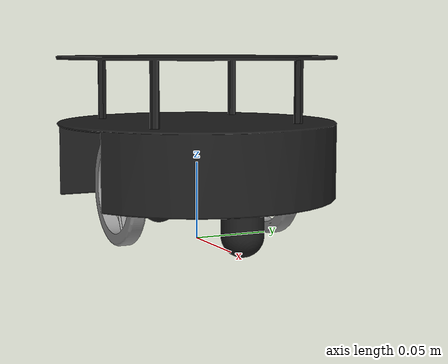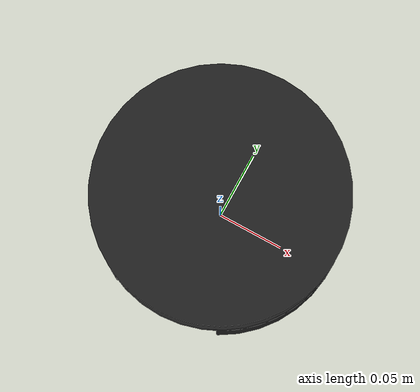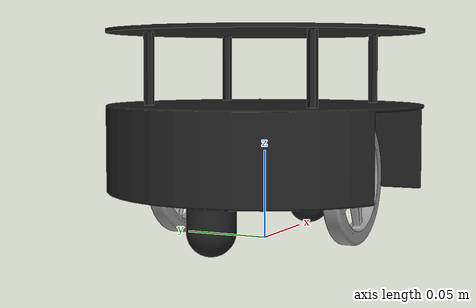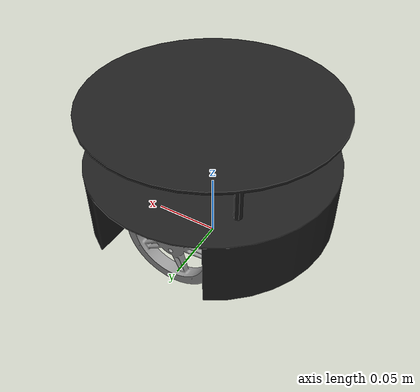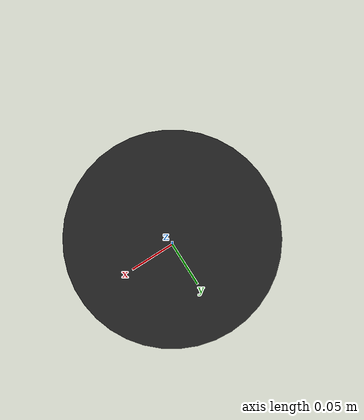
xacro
<?xml version="1.0"?>
<robot xmlns:xacro="http://www.ros.org/wiki/xacro">

    <xacro:property name="scale_num" value="1.0" />
    <xacro:property name="scale" value="${scale_num} ${scale_num} ${scale_num}" />

    <link name="base_footprint" />

    <link name="base_link">
        <visual>
            <geometry>
                <mesh filename="package://robot_description/meshes/base_link.dae"
                    scale="${scale}"/>
            </geometry>
            <origin xyz="0.0 0.0 0.0" rpy="0.0 0.0 ${-pi/2}"/>
            <material name="black"/>
        </visual>
        <xacro:base_inertia xyz="0.0 0.0 0.0" rpy="0.0 0.0 0.0"/>
        <collision>
            <geometry>
                <mesh filename="package://robot_description/meshes/base_link.dae"
                    scale="${scale}"/>
            </geometry>
            <origin xyz="0.0 0.0 0.0" rpy="0.0 0.0 ${-pi/2}"/>
        </collision>
    </link>

    <joint name="base_joint" type="fixed">
        <parent link="base_footprint"/>
        <child link="base_link"/>
        <origin xyz="0.0 0.0 ${scale_num * 0.028}" rpy="0.0 0.0 0.0"/>
    </joint>

    <xacro:macro name="motor_link" params="prefix">
        <link name="${prefix}_motor_link">
            <visual>
                <geometry>
                    <mesh filename="package://robot_description/meshes/motor.dae"
                        scale="${scale}"/>
                </geometry>
                <origin xyz="0.0 0.0 0.0" rpy="0.0 0.0 0.0"/>
                <material name="silver"/>
            </visual>
            <xacro:motor_inertia xyz="0.0 0.0 0.0" rpy="0.0 0.0 0.0"/>
            <collision>
                <geometry>
                    <mesh filename="package://robot_description/meshes/motor.dae"
                        scale="${scale}"/>
                </geometry>
                <origin xyz="0.0 0.0 0.0" rpy=" 0.0  0.0 0.0"/>
            </collision>
        </link>
    </xacro:macro>

    <xacro:motor_link prefix="left" />
    <xacro:motor_link prefix="right" />

    <joint name="base_right_motor_joint" type="fixed">
        <parent link="base_link"/>
        <child link="right_motor_link"/>
        <origin xyz=" 0.0 ${-scale_num * 0.03348} ${scale_num*0.008}" rpy="0.0 0.0 ${-pi/2}"/>
    </joint>

        <joint name="base_left_motor_joint" type="fixed">
        <parent link="base_link"/>
        <child link="left_motor_link"/>
        <origin xyz=" 0.0 ${scale_num * 0.03348} ${scale_num*0.008}" rpy=" 0.0  0.0 ${pi/2}"/>
    </joint>

    <xacro:macro name="wheel_link" params="prefix rotation">
        <link name="${prefix}_wheel_link">
            <visual>
                <geometry>
                    <mesh filename="package://robot_description/meshes/wheel.dae"
                        scale="${scale}"/>
                </geometry>
                <origin xyz="0.0 0.0 0.0" rpy=" 0.0  0.0 ${rotation}"/>
                <material name="gray"/>
            </visual>
            <xacro:motor_inertia xyz="0.0 0.0 0.0" rpy="0.0 0.0 0.0"/>
            <collision>
                <geometry>
                    <mesh filename="package://robot_description/meshes/wheel.dae"
                        scale="${scale}"/>
                </geometry>
                <origin xyz="0.0 0.0 0.0" rpy="0 0.0 ${rotation}"/>
            </collision>
        </link>
    </xacro:macro>

    <xacro:wheel_link prefix="right" rotation="${pi/2}"/>
    <xacro:wheel_link prefix="left" rotation="${-pi/2}"/>

    <joint name="left_motor_wheel_joint" type="continuous">
        <parent link="left_motor_link"/>
        <child link="left_wheel_link"/>
        <origin xyz="${scale_num * 0.01992} 0.0 0.0" rpy="0.0 0.0 ${pi/2}"/>
        <axis xyz=" 0.0 -1 0.0"/>
    </joint>

    <joint name="right_motor_wheel_joint" type="continuous">
        <parent link="right_motor_link"/>
        <child link="right_wheel_link"/>
        <origin xyz="${scale_num * 0.01992} 0.0 0.0" rpy="0 0 ${-pi/2}"/>
        <axis xyz="0.0 -1.0 0.0"/>
    </joint>

</robot>
